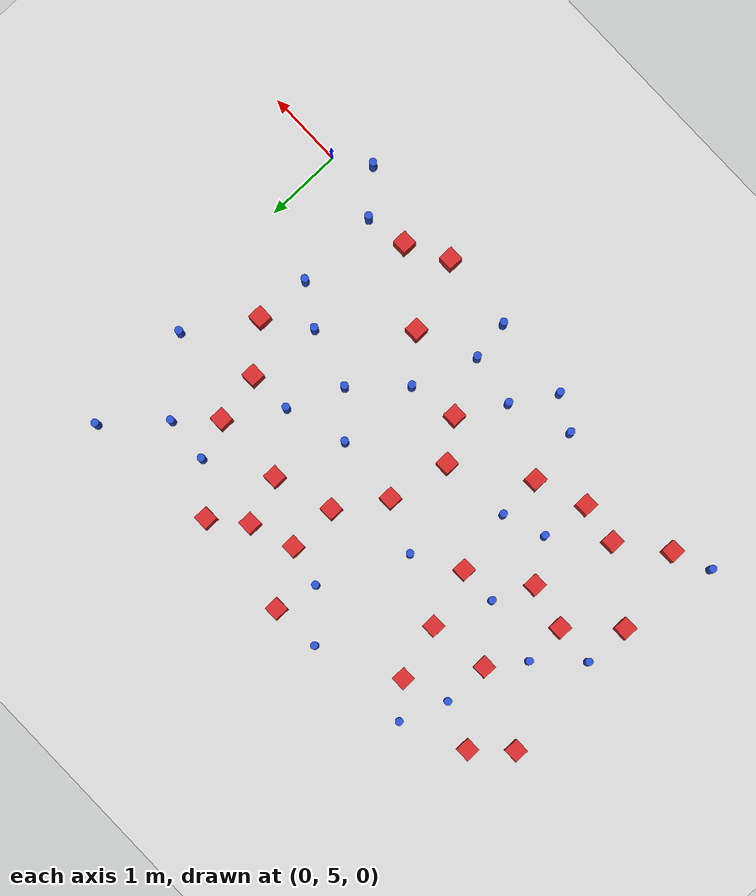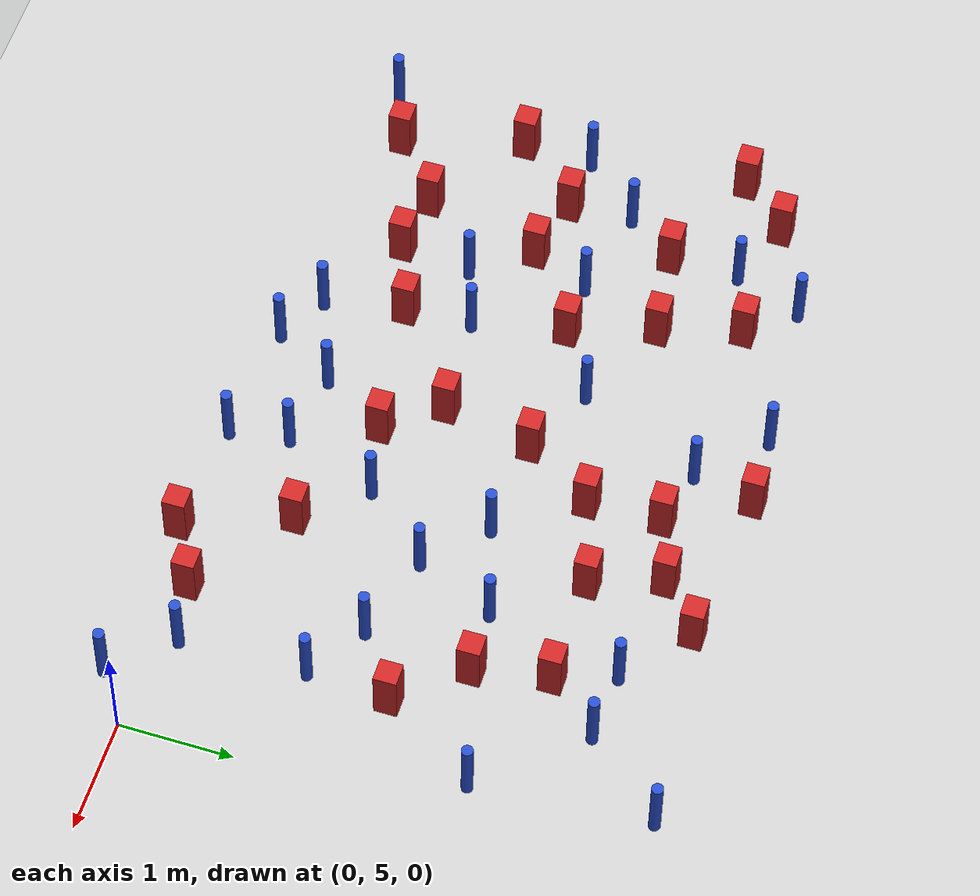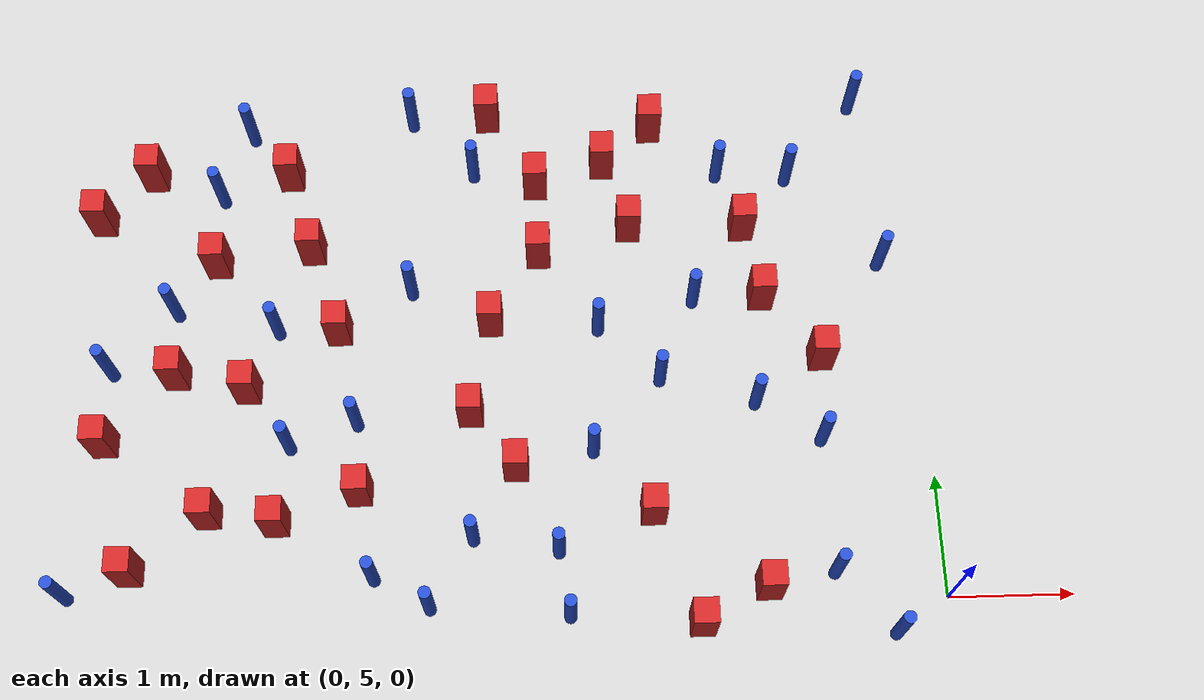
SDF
<sdf version="1.6">
 <world name="default">
  <model name="ground_plane">
   <static>1</static>
   <link name="link">
    <collision name="collision">
     <geometry><plane><normal>0 0 1</normal><size>100 100</size></plane></geometry>
     <surface><friction><ode><mu>100</mu><mu2>50</mu2></ode></friction></surface>
    </collision>
    <visual name="visual">
     <cast_shadows>0</cast_shadows>
     <geometry><plane><normal>0 0 1</normal><size>100 100</size></plane></geometry>
     <material>
      <ambient>1.0 1.0 1.0 1.0</ambient>
      <diffuse>0.8 0.8 0.8 1.0</diffuse>
      <specular>0.01 0.01 0.01 1.000000</specular>
     </material>
    </visual>
   </link>
  </model>
  <model name="square_post_obstacle1">
   <static>true</static>
   <pose>-6.74980819565 6.41191254791 1.91545236811e-07 -7.35059704564e-06 1.12565212e-07 2.39332434364e-05</pose>
   <link name="link">
    <pose>0 0 0.25 0 -0 0</pose>
    <inertial>
     <mass>100</mass>
     <inertia>
      <ixx>0.166667</ixx>
      <ixy>0</ixy>
      <ixz>0</ixz>
      <iyy>0.166667</iyy>
      <iyz>0</iyz>
      <izz>0.166667</izz>
     </inertia>
    </inertial>
    <collision name="collision"><geometry><box><size>.2 .2 .5</size></box></geometry></collision>
    <visual name="visual">
     <geometry><box><size>.2 .2 .5</size></box></geometry>
     <material>
      <script><name>Gazebo/Red</name><uri>file://media/materials/scripts/gazebo.material</uri></script>
     </material>
    </visual>
   </link>
  </model>
  <model name="square_post_obstacle8">
   <static>true</static>
   <pose>-5.31815626611 5.71131109197 1.91545236811e-07 -7.35059704564e-06 1.12565212e-07 2.39332434364e-05</pose>
   <link name="link">
    <pose>0 0 0.25 0 -0 0</pose>
    <inertial>
     <mass>100</mass>
     <inertia>
      <ixx>0.166667</ixx>
      <ixy>0</ixy>
      <ixz>0</ixz>
      <iyy>0.166667</iyy>
      <iyz>0</iyz>
      <izz>0.166667</izz>
     </inertia>
    </inertial>
    <collision name="collision"><geometry><box><size>.2 .2 .5</size></box></geometry></collision>
    <visual name="visual">
     <geometry><box><size>.2 .2 .5</size></box></geometry>
     <material>
      <script><name>Gazebo/Red</name><uri>file://media/materials/scripts/gazebo.material</uri></script>
     </material>
    </visual>
   </link>
  </model>
  <model name="square_post_obstacle9">
   <static>true</static>
   <pose>-1.41606634563 5.10704584635 1.91545236811e-07 -7.35059704564e-06 1.12565212e-07 2.39332434364e-05</pose>
   <link name="link">
    <pose>0 0 0.25 0 -0 0</pose>
    <inertial>
     <mass>100</mass>
     <inertia>
      <ixx>0.166667</ixx>
      <ixy>0</ixy>
      <ixz>0</ixz>
      <iyy>0.166667</iyy>
      <iyz>0</iyz>
      <izz>0.166667</izz>
     </inertia>
    </inertial>
    <collision name="collision"><geometry><box><size>.2 .2 .5</size></box></geometry></collision>
    <visual name="visual">
     <geometry><box><size>.2 .2 .5</size></box></geometry>
     <material>
      <script><name>Gazebo/Red</name><uri>file://media/materials/scripts/gazebo.material</uri></script>
     </material>
    </visual>
   </link>
  </model>
  <model name="square_post_obstacle14">
   <static>true</static>
   <pose>-6.19371936549 6.98780163271 1.91545236811e-07 -7.35059704564e-06 1.12565212e-07 2.39332434364e-05</pose>
   <link name="link">
    <pose>0 0 0.25 0 -0 0</pose>
    <inertial>
     <mass>100</mass>
     <inertia>
      <ixx>0.166667</ixx>
      <ixy>0</ixy>
      <ixz>0</ixz>
      <iyy>0.166667</iyy>
      <iyz>0</iyz>
      <izz>0.166667</izz>
     </inertia>
    </inertial>
    <collision name="collision"><geometry><box><size>.2 .2 .5</size></box></geometry></collision>
    <visual name="visual">
     <geometry><box><size>.2 .2 .5</size></box></geometry>
     <material>
      <script><name>Gazebo/Red</name><uri>file://media/materials/scripts/gazebo.material</uri></script>
     </material>
    </visual>
   </link>
  </model>
  <model name="pole_obstacle14">
   <static>true</static>
   <pose>-1.03722011202 8.71452912254 7.38925637345e-09 -8.47170692798e-08 1.2497676492e-08 -1.74513093025e-07</pose>
   <link name="link">
    <pose>0 0 0.3 0 -0 0</pose>
    <inertial>
     <mass>1</mass>
     <inertia><ixx>0.145833</ixx><ixy>0</ixy><ixz>0</ixz><iyy>0.145833</iyy><iyz>0</iyz><izz>0.125</izz></inertia>
    </inertial>
    <collision name="collision">
     <geometry><cylinder><radius>0.05</radius><length>.6</length></cylinder></geometry>
    </collision>
    <visual name="visual">
     <geometry><cylinder><radius>0.05</radius><length>.6</length></cylinder></geometry>
     <material>
      <script><name>Gazebo/Blue</name><uri>file://media/materials/scripts/gazebo.material</uri></script>
     </material>
    </visual>
   </link>
  </model>
  <model name="square_post_obstacle31">
   <static>true</static>
   <pose>-6.91142593812 8.42208887054 1.91545236811e-07 -7.35059704564e-06 1.12565212e-07 2.39332434364e-05</pose>
   <link name="link">
    <pose>0 0 0.25 0 -0 0</pose>
    <inertial>
     <mass>100</mass>
     <inertia>
      <ixx>0.166667</ixx>
      <ixy>0</ixy>
      <ixz>0</ixz>
      <iyy>0.166667</iyy>
      <iyz>0</iyz>
      <izz>0.166667</izz>
     </inertia>
    </inertial>
    <collision name="collision"><geometry><box><size>.2 .2 .5</size></box></geometry></collision>
    <visual name="visual">
     <geometry><box><size>.2 .2 .5</size></box></geometry>
     <material>
      <script><name>Gazebo/Red</name><uri>file://media/materials/scripts/gazebo.material</uri></script>
     </material>
    </visual>
   </link>
  </model>
  <model name="pole_obstacle33">
   <static>true</static>
   <pose>-2.20297794973 6.87162963352 7.38925637345e-09 -8.47170692798e-08 1.24976765033e-08 -1.74513093019e-07</pose>
   <link name="link">
    <pose>0 0 0.3 0 -0 0</pose>
    <inertial>
     <mass>1</mass>
     <inertia><ixx>0.145833</ixx><ixy>0</ixy><ixz>0</ixz><iyy>0.145833</iyy><iyz>0</iyz><izz>0.125</izz></inertia>
    </inertial>
    <collision name="collision">
     <geometry><cylinder><radius>0.05</radius><length>.6</length></cylinder></geometry>
    </collision>
    <visual name="visual">
     <geometry><cylinder><radius>0.05</radius><length>.6</length></cylinder></geometry>
     <material>
      <script><name>Gazebo/Blue</name><uri>file://media/materials/scripts/gazebo.material</uri></script>
     </material>
    </visual>
   </link>
  </model>
  <model name="pole_obstacle36">
   <static>true</static>
   <pose>-3.74525703613 5.54176647954 7.38925637345e-09 -8.47170692794e-08 1.24976764468e-08 -1.7451309304e-07</pose>
   <link name="link">
    <pose>0 0 0.3 0 -0 0</pose>
    <inertial>
     <mass>1</mass>
     <inertia><ixx>0.145833</ixx><ixy>0</ixy><ixz>0</ixz><iyy>0.145833</iyy><iyz>0</iyz><izz>0.125</izz></inertia>
    </inertial>
    <collision name="collision">
     <geometry><cylinder><radius>0.05</radius><length>.6</length></cylinder></geometry>
    </collision>
    <visual name="visual">
     <geometry><cylinder><radius>0.05</radius><length>.6</length></cylinder></geometry>
     <material>
      <script><name>Gazebo/Blue</name><uri>file://media/materials/scripts/gazebo.material</uri></script>
     </material>
    </visual>
   </link>
  </model>
  <model name="square_post_obstacle43">
   <static>true</static>
   <pose>-4.66022509993 5.95121240094 1.91545236811e-07 -7.35059704564e-06 1.12565212e-07 2.39332434364e-05</pose>
   <link name="link">
    <pose>0 0 0.25 0 -0 0</pose>
    <inertial>
     <mass>100</mass>
     <inertia>
      <ixx>0.166667</ixx>
      <ixy>0</ixy>
      <ixz>0</ixz>
      <iyy>0.166667</iyy>
      <iyz>0</iyz>
      <izz>0.166667</izz>
     </inertia>
    </inertial>
    <collision name="collision"><geometry><box><size>.2 .2 .5</size></box></geometry></collision>
    <visual name="visual">
     <geometry><box><size>.2 .2 .5</size></box></geometry>
     <material>
      <script><name>Gazebo/Red</name><uri>file://media/materials/scripts/gazebo.material</uri></script>
     </material>
    </visual>
   </link>
  </model>
  <model name="pole_obstacle47">
   <static>true</static>
   <pose>-4.69561402672 6.53492184711 7.38925637345e-09 -8.47170692796e-08 1.24976764786e-08 -1.74513093032e-07</pose>
   <link name="link">
    <pose>0 0 0.3 0 -0 0</pose>
    <inertial>
     <mass>1</mass>
     <inertia><ixx>0.145833</ixx><ixy>0</ixy><ixz>0</ixz><iyy>0.145833</iyy><iyz>0</iyz><izz>0.125</izz></inertia>
    </inertial>
    <collision name="collision">
     <geometry><cylinder><radius>0.05</radius><length>.6</length></cylinder></geometry>
    </collision>
    <visual name="visual">
     <geometry><cylinder><radius>0.05</radius><length>.6</length></cylinder></geometry>
     <material>
      <script><name>Gazebo/Blue</name><uri>file://media/materials/scripts/gazebo.material</uri></script>
     </material>
    </visual>
   </link>
  </model>
  <model name="square_post_obstacle56">
   <static>true</static>
   <pose>-4.86194893266 7.35659122037 1.91545236811e-07 -7.35059704564e-06 1.12565212e-07 2.39332434364e-05</pose>
   <link name="link">
    <pose>0 0 0.25 0 -0 0</pose>
    <inertial>
     <mass>100</mass>
     <inertia>
      <ixx>0.166667</ixx>
      <ixy>0</ixy>
      <ixz>0</ixz>
      <iyy>0.166667</iyy>
      <iyz>0</iyz>
      <izz>0.166667</izz>
     </inertia>
    </inertial>
    <collision name="collision"><geometry><box><size>.2 .2 .5</size></box></geometry></collision>
    <visual name="visual">
     <geometry><box><size>.2 .2 .5</size></box></geometry>
     <material>
      <script><name>Gazebo/Red</name><uri>file://media/materials/scripts/gazebo.material</uri></script>
     </material>
    </visual>
   </link>
  </model>
  <model name="square_post_obstacle57">
   <static>true</static>
   <pose>-1.95375694847 4.82960413653 1.91545236811e-07 -7.35059704564e-06 1.12565212e-07 2.39332434364e-05</pose>
   <link name="link">
    <pose>0 0 0.25 0 -0 0</pose>
    <inertial>
     <mass>100</mass>
     <inertia>
      <ixx>0.166667</ixx>
      <ixy>0</ixy>
      <ixz>0</ixz>
      <iyy>0.166667</iyy>
      <iyz>0</iyz>
      <izz>0.166667</izz>
     </inertia>
    </inertial>
    <collision name="collision"><geometry><box><size>.2 .2 .5</size></box></geometry></collision>
    <visual name="visual">
     <geometry><box><size>.2 .2 .5</size></box></geometry>
     <material>
      <script><name>Gazebo/Red</name><uri>file://media/materials/scripts/gazebo.material</uri></script>
     </material>
    </visual>
   </link>
  </model>
  <model name="square_post_obstacle58">
   <static>true</static>
   <pose>-3.59701604902 7.40846574962 1.91545236811e-07 -7.35059704564e-06 1.12565212e-07 2.39332434364e-05</pose>
   <link name="link">
    <pose>0 0 0.25 0 -0 0</pose>
    <inertial>
     <mass>100</mass>
     <inertia>
      <ixx>0.166667</ixx>
      <ixy>0</ixy>
      <ixz>0</ixz>
      <iyy>0.166667</iyy>
      <iyz>0</iyz>
      <izz>0.166667</izz>
     </inertia>
    </inertial>
    <collision name="collision"><geometry><box><size>.2 .2 .5</size></box></geometry></collision>
    <visual name="visual">
     <geometry><box><size>.2 .2 .5</size></box></geometry>
     <material>
      <script><name>Gazebo/Red</name><uri>file://media/materials/scripts/gazebo.material</uri></script>
     </material>
    </visual>
   </link>
  </model>
  <model name="pole_obstacle57">
   <static>true</static>
   <pose>-0.881199028683 5.2098864928 7.38925637345e-09 -8.471706928e-08 1.24976765086e-08 -1.74513093015e-07</pose>
   <link name="link">
    <pose>0 0 0.3 0 -0 0</pose>
    <inertial>
     <mass>1</mass>
     <inertia><ixx>0.145833</ixx><ixy>0</ixy><ixz>0</ixz><iyy>0.145833</iyy><iyz>0</iyz><izz>0.125</izz></inertia>
    </inertial>
    <collision name="collision">
     <geometry><cylinder><radius>0.05</radius><length>.6</length></cylinder></geometry>
    </collision>
    <visual name="visual">
     <geometry><cylinder><radius>0.05</radius><length>.6</length></cylinder></geometry>
     <material>
      <script><name>Gazebo/Blue</name><uri>file://media/materials/scripts/gazebo.material</uri></script>
     </material>
    </visual>
   </link>
  </model>
  <model name="pole_obstacle58">
   <static>true</static>
   <pose>-4.27140751306 9.33314071627 7.38925637345e-09 -8.471706928e-08 1.24976765081e-08 -1.74513093015e-07</pose>
   <link name="link">
    <pose>0 0 0.3 0 -0 0</pose>
    <inertial>
     <mass>1</mass>
     <inertia><ixx>0.145833</ixx><ixy>0</ixy><ixz>0</ixz><iyy>0.145833</iyy><iyz>0</iyz><izz>0.125</izz></inertia>
    </inertial>
    <collision name="collision">
     <geometry><cylinder><radius>0.05</radius><length>.6</length></cylinder></geometry>
    </collision>
    <visual name="visual">
     <geometry><cylinder><radius>0.05</radius><length>.6</length></cylinder></geometry>
     <material>
      <script><name>Gazebo/Blue</name><uri>file://media/materials/scripts/gazebo.material</uri></script>
     </material>
    </visual>
   </link>
  </model>
  <model name="pole_obstacle62">
   <static>true</static>
   <pose>-5.23979569 6.34465374165 7.38925637345e-09 -8.47170692796e-08 1.24976764786e-08 -1.74513093032e-07</pose>
   <link name="link">
    <pose>0 0 0.3 0 -0 0</pose>
    <inertial>
     <mass>1</mass>
     <inertia><ixx>0.145833</ixx><ixy>0</ixy><ixz>0</ixz><iyy>0.145833</iyy><iyz>0</iyz><izz>0.125</izz></inertia>
    </inertial>
    <collision name="collision">
     <geometry><cylinder><radius>0.05</radius><length>.6</length></cylinder></geometry>
    </collision>
    <visual name="visual">
     <geometry><cylinder><radius>0.05</radius><length>.6</length></cylinder></geometry>
     <material>
      <script><name>Gazebo/Blue</name><uri>file://media/materials/scripts/gazebo.material</uri></script>
     </material>
    </visual>
   </link>
  </model>
  <model name="square_post_obstacle70">
   <static>true</static>
   <pose>-0.860767166952 7.03970441917 1.91545236811e-07 -7.35059704564e-06 1.12565212e-07 2.39332434364e-05</pose>
   <link name="link">
    <pose>0 0 0.25 0 -0 0</pose>
    <inertial>
     <mass>100</mass>
     <inertia>
      <ixx>0.166667</ixx>
      <ixy>0</ixy>
      <ixz>0</ixz>
      <iyy>0.166667</iyy>
      <iyz>0</iyz>
      <izz>0.166667</izz>
     </inertia>
    </inertial>
    <collision name="collision"><geometry><box><size>.2 .2 .5</size></box></geometry></collision>
    <visual name="visual">
     <geometry><box><size>.2 .2 .5</size></box></geometry>
     <material>
      <script><name>Gazebo/Red</name><uri>file://media/materials/scripts/gazebo.material</uri></script>
     </material>
    </visual>
   </link>
  </model>
  <model name="pole_obstacle78">
   <static>true</static>
   <pose>-6.9549150517 5.13867320979 7.38925637345e-09 -8.47170692796e-08 1.24976764786e-08 -1.74513093032e-07</pose>
   <link name="link">
    <pose>0 0 0.3 0 -0 0</pose>
    <inertial>
     <mass>1</mass>
     <inertia><ixx>0.145833</ixx><ixy>0</ixy><ixz>0</ixz><iyy>0.145833</iyy><iyz>0</iyz><izz>0.125</izz></inertia>
    </inertial>
    <collision name="collision">
     <geometry><cylinder><radius>0.05</radius><length>.6</length></cylinder></geometry>
    </collision>
    <visual name="visual">
     <geometry><cylinder><radius>0.05</radius><length>.6</length></cylinder></geometry>
     <material>
      <script><name>Gazebo/Blue</name><uri>file://media/materials/scripts/gazebo.material</uri></script>
     </material>
    </visual>
   </link>
  </model>
  <model name="square_post_obstacle80">
   <static>true</static>
   <pose>-6.49339954893 8.84500670566 1.91545236811e-07 -7.35059704564e-06 1.12565212e-07 2.39332434364e-05</pose>
   <link name="link">
    <pose>0 0 0.25 0 -0 0</pose>
    <inertial>
     <mass>100</mass>
     <inertia>
      <ixx>0.166667</ixx>
      <ixy>0</ixy>
      <ixz>0</ixz>
      <iyy>0.166667</iyy>
      <iyz>0</iyz>
      <izz>0.166667</izz>
     </inertia>
    </inertial>
    <collision name="collision"><geometry><box><size>.2 .2 .5</size></box></geometry></collision>
    <visual name="visual">
     <geometry><box><size>.2 .2 .5</size></box></geometry>
     <material>
      <script><name>Gazebo/Red</name><uri>file://media/materials/scripts/gazebo.material</uri></script>
     </material>
    </visual>
   </link>
  </model>
  <model name="square_post_obstacle85">
   <static>true</static>
   <pose>-2.63143152193 8.87772631918 1.91545236811e-07 -7.35059704564e-06 1.12565212e-07 2.39332434364e-05</pose>
   <link name="link">
    <pose>0 0 0.25 0 -0 0</pose>
    <inertial>
     <mass>100</mass>
     <inertia>
      <ixx>0.166667</ixx>
      <ixy>0</ixy>
      <ixz>0</ixz>
      <iyy>0.166667</iyy>
      <iyz>0</iyz>
      <izz>0.166667</izz>
     </inertia>
    </inertial>
    <collision name="collision"><geometry><box><size>.2 .2 .5</size></box></geometry></collision>
    <visual name="visual">
     <geometry><box><size>.2 .2 .5</size></box></geometry>
     <material>
      <script><name>Gazebo/Red</name><uri>file://media/materials/scripts/gazebo.material</uri></script>
     </material>
    </visual>
   </link>
  </model>
  <model name="pole_obstacle98">
   <static>true</static>
   <pose>-1.42476285411 6.64820681242 7.38925637345e-09 -8.47170692799e-08 1.24976765033e-08 -1.74513093018e-07</pose>
   <link name="link">
    <pose>0 0 0.3 0 -0 0</pose>
    <inertial>
     <mass>1</mass>
     <inertia><ixx>0.145833</ixx><ixy>0</ixy><ixz>0</ixz><iyy>0.145833</iyy><iyz>0</iyz><izz>0.125</izz></inertia>
    </inertial>
    <collision name="collision">
     <geometry><cylinder><radius>0.05</radius><length>.6</length></cylinder></geometry>
    </collision>
    <visual name="visual">
     <geometry><cylinder><radius>0.05</radius><length>.6</length></cylinder></geometry>
     <material>
      <script><name>Gazebo/Blue</name><uri>file://media/materials/scripts/gazebo.material</uri></script>
     </material>
    </visual>
   </link>
  </model>
  <model name="pole_obstacle106">
   <static>true</static>
   <pose>-2.76770003163 6.25996552945 7.38925637345e-09 -8.47170692798e-08 1.24976765033e-08 -1.74513093019e-07</pose>
   <link name="link">
    <pose>0 0 0.3 0 -0 0</pose>
    <inertial>
     <mass>1</mass>
     <inertia><ixx>0.145833</ixx><ixy>0</ixy><ixz>0</ixz><iyy>0.145833</iyy><iyz>0</iyz><izz>0.125</izz></inertia>
    </inertial>
    <collision name="collision">
     <geometry><cylinder><radius>0.05</radius><length>.6</length></cylinder></geometry>
    </collision>
    <visual name="visual">
     <geometry><cylinder><radius>0.05</radius><length>.6</length></cylinder></geometry>
     <material>
      <script><name>Gazebo/Blue</name><uri>file://media/materials/scripts/gazebo.material</uri></script>
     </material>
    </visual>
   </link>
  </model>
  <model name="square_post_obstacle94">
   <static>true</static>
   <pose>-1.45116972574 8.24971215237 1.91545236811e-07 -7.35059704564e-06 1.12565212e-07 2.39332434364e-05</pose>
   <link name="link">
    <pose>0 0 0.25 0 -0 0</pose>
    <inertial>
     <mass>100</mass>
     <inertia>
      <ixx>0.166667</ixx>
      <ixy>0</ixy>
      <ixz>0</ixz>
      <iyy>0.166667</iyy>
      <iyz>0</iyz>
      <izz>0.166667</izz>
     </inertia>
    </inertial>
    <collision name="collision"><geometry><box><size>.2 .2 .5</size></box></geometry></collision>
    <visual name="visual">
     <geometry><box><size>.2 .2 .5</size></box></geometry>
     <material>
      <script><name>Gazebo/Red</name><uri>file://media/materials/scripts/gazebo.material</uri></script>
     </material>
    </visual>
   </link>
  </model>
  <model name="pole_obstacle111">
   <static>true</static>
   <pose>-4.08898049188 4.9918771176 7.38925637345e-09 -8.47170692796e-08 1.24976764786e-08 -1.74513093032e-07</pose>
   <link name="link">
    <pose>0 0 0.3 0 -0 0</pose>
    <inertial>
     <mass>1</mass>
     <inertia><ixx>0.145833</ixx><ixy>0</ixy><ixz>0</ixz><iyy>0.145833</iyy><iyz>0</iyz><izz>0.125</izz></inertia>
    </inertial>
    <collision name="collision">
     <geometry><cylinder><radius>0.05</radius><length>.6</length></cylinder></geometry>
    </collision>
    <visual name="visual">
     <geometry><cylinder><radius>0.05</radius><length>.6</length></cylinder></geometry>
     <material>
      <script><name>Gazebo/Blue</name><uri>file://media/materials/scripts/gazebo.material</uri></script>
     </material>
    </visual>
   </link>
  </model>
  <model name="square_post_obstacle102">
   <static>true</static>
   <pose>-2.30257768896 5.74041312839 1.91545236811e-07 -7.35059704564e-06 1.12565212e-07 2.39332434364e-05</pose>
   <link name="link">
    <pose>0 0 0.25 0 -0 0</pose>
    <inertial>
     <mass>100</mass>
     <inertia>
      <ixx>0.166667</ixx>
      <ixy>0</ixy>
      <ixz>0</ixz>
      <iyy>0.166667</iyy>
      <iyz>0</iyz>
      <izz>0.166667</izz>
     </inertia>
    </inertial>
    <collision name="collision"><geometry><box><size>.2 .2 .5</size></box></geometry></collision>
    <visual name="visual">
     <geometry><box><size>.2 .2 .5</size></box></geometry>
     <material>
      <script><name>Gazebo/Red</name><uri>file://media/materials/scripts/gazebo.material</uri></script>
     </material>
    </visual>
   </link>
  </model>
  <model name="square_post_obstacle112">
   <static>true</static>
   <pose>-3.61967836778 9.36351441055 1.91545236811e-07 -7.35059704564e-06 1.12565212e-07 2.39332434364e-05</pose>
   <link name="link">
    <pose>0 0 0.25 0 -0 0</pose>
    <inertial>
     <mass>100</mass>
     <inertia>
      <ixx>0.166667</ixx>
      <ixy>0</ixy>
      <ixz>0</ixz>
      <iyy>0.166667</iyy>
      <iyz>0</iyz>
      <izz>0.166667</izz>
     </inertia>
    </inertial>
    <collision name="collision"><geometry><box><size>.2 .2 .5</size></box></geometry></collision>
    <visual name="visual">
     <geometry><box><size>.2 .2 .5</size></box></geometry>
     <material>
      <script><name>Gazebo/Red</name><uri>file://media/materials/scripts/gazebo.material</uri></script>
     </material>
    </visual>
   </link>
  </model>
  <model name="pole_obstacle122">
   <static>true</static>
   <pose>-1.63828377576 8.76223526849 7.38925637345e-09 -8.47170692798e-08 1.24976764881e-08 -1.74513093027e-07</pose>
   <link name="link">
    <pose>0 0 0.3 0 -0 0</pose>
    <inertial>
     <mass>1</mass>
     <inertia><ixx>0.145833</ixx><ixy>0</ixy><ixz>0</ixz><iyy>0.145833</iyy><iyz>0</iyz><izz>0.125</izz></inertia>
    </inertial>
    <collision name="collision">
     <geometry><cylinder><radius>0.05</radius><length>.6</length></cylinder></geometry>
    </collision>
    <visual name="visual">
     <geometry><cylinder><radius>0.05</radius><length>.6</length></cylinder></geometry>
     <material>
      <script><name>Gazebo/Blue</name><uri>file://media/materials/scripts/gazebo.material</uri></script>
     </material>
    </visual>
   </link>
  </model>
  <model name="pole_obstacle123">
   <static>true</static>
   <pose>-4.25988179346 7.70434869226 7.38925637345e-09 -8.47170692796e-08 1.24976764786e-08 -1.74513093032e-07</pose>
   <link name="link">
    <pose>0 0 0.3 0 -0 0</pose>
    <inertial>
     <mass>1</mass>
     <inertia><ixx>0.145833</ixx><ixy>0</ixy><ixz>0</ixz><iyy>0.145833</iyy><iyz>0</iyz><izz>0.125</izz></inertia>
    </inertial>
    <collision name="collision">
     <geometry><cylinder><radius>0.05</radius><length>.6</length></cylinder></geometry>
    </collision>
    <visual name="visual">
     <geometry><cylinder><radius>0.05</radius><length>.6</length></cylinder></geometry>
     <material>
      <script><name>Gazebo/Blue</name><uri>file://media/materials/scripts/gazebo.material</uri></script>
     </material>
    </visual>
   </link>
  </model>
  <model name="pole_obstacle126">
   <static>true</static>
   <pose>-0.304045862667 7.8843173404 7.38925637345e-09 -8.471706928e-08 1.24976765079e-08 -1.74513093015e-07</pose>
   <link name="link">
    <pose>0 0 0.3 0 -0 0</pose>
    <inertial>
     <mass>1</mass>
     <inertia><ixx>0.145833</ixx><ixy>0</ixy><ixz>0</ixz><iyy>0.145833</iyy><iyz>0</iyz><izz>0.125</izz></inertia>
    </inertial>
    <collision name="collision">
     <geometry><cylinder><radius>0.05</radius><length>.6</length></cylinder></geometry>
    </collision>
    <visual name="visual">
     <geometry><cylinder><radius>0.05</radius><length>.6</length></cylinder></geometry>
     <material>
      <script><name>Gazebo/Blue</name><uri>file://media/materials/scripts/gazebo.material</uri></script>
     </material>
    </visual>
   </link>
  </model>
  <model name="pole_obstacle127">
   <static>true</static>
   <pose>-0.437955153199 4.71534373623 7.38925637345e-09 -8.471706928e-08 1.24976765079e-08 -1.74513093015e-07</pose>
   <link name="link">
    <pose>0 0 0.3 0 -0 0</pose>
    <inertial>
     <mass>1</mass>
     <inertia><ixx>0.145833</ixx><ixy>0</ixy><ixz>0</ixz><iyy>0.145833</iyy><iyz>0</iyz><izz>0.125</izz></inertia>
    </inertial>
    <collision name="collision">
     <geometry><cylinder><radius>0.05</radius><length>.6</length></cylinder></geometry>
    </collision>
    <visual name="visual">
     <geometry><cylinder><radius>0.05</radius><length>.6</length></cylinder></geometry>
     <material>
      <script><name>Gazebo/Blue</name><uri>file://media/materials/scripts/gazebo.material</uri></script>
     </material>
    </visual>
   </link>
  </model>
  <model name="square_post_obstacle113">
   <static>true</static>
   <pose>-3.39763083607 6.13116922889 1.91545236811e-07 -7.35059704564e-06 1.12565212e-07 2.39332434364e-05</pose>
   <link name="link">
    <pose>0 0 0.25 0 -0 0</pose>
    <inertial>
     <mass>100</mass>
     <inertia>
      <ixx>0.166667</ixx>
      <ixy>0</ixy>
      <ixz>0</ixz>
      <iyy>0.166667</iyy>
      <iyz>0</iyz>
      <izz>0.166667</izz>
     </inertia>
    </inertial>
    <collision name="collision"><geometry><box><size>.2 .2 .5</size></box></geometry></collision>
    <visual name="visual">
     <geometry><box><size>.2 .2 .5</size></box></geometry>
     <material>
      <script><name>Gazebo/Red</name><uri>file://media/materials/scripts/gazebo.material</uri></script>
     </material>
    </visual>
   </link>
  </model>
  <model name="pole_obstacle129">
   <static>true</static>
   <pose>-6.73546118821 7.02579661546 7.38925637345e-09 -8.47170692796e-08 1.24976764786e-08 -1.74513093032e-07</pose>
   <link name="link">
    <pose>0 0 0.3 0 -0 0</pose>
    <inertial>
     <mass>1</mass>
     <inertia><ixx>0.145833</ixx><ixy>0</ixy><ixz>0</ixz><iyy>0.145833</iyy><iyz>0</iyz><izz>0.125</izz></inertia>
    </inertial>
    <collision name="collision">
     <geometry><cylinder><radius>0.05</radius><length>.6</length></cylinder></geometry>
    </collision>
    <visual name="visual">
     <geometry><cylinder><radius>0.05</radius><length>.6</length></cylinder></geometry>
     <material>
      <script><name>Gazebo/Blue</name><uri>file://media/materials/scripts/gazebo.material</uri></script>
     </material>
    </visual>
   </link>
  </model>
  <model name="square_post_obstacle122">
   <static>true</static>
   <pose>-1.32738955477 7.59717632512 1.91545236811e-07 -7.35059704564e-06 1.12565212e-07 2.39332434364e-05</pose>
   <link name="link">
    <pose>0 0 0.25 0 -0 0</pose>
    <inertial>
     <mass>100</mass>
     <inertia>
      <ixx>0.166667</ixx>
      <ixy>0</ixy>
      <ixz>0</ixz>
      <iyy>0.166667</iyy>
      <iyz>0</iyz>
      <izz>0.166667</izz>
     </inertia>
    </inertial>
    <collision name="collision"><geometry><box><size>.2 .2 .5</size></box></geometry></collision>
    <visual name="visual">
     <geometry><box><size>.2 .2 .5</size></box></geometry>
     <material>
      <script><name>Gazebo/Red</name><uri>file://media/materials/scripts/gazebo.material</uri></script>
     </material>
    </visual>
   </link>
  </model>
  <model name="pole_obstacle139">
   <static>true</static>
   <pose>-1.8990231219 7.57481153132 7.38925637345e-09 -8.47170692799e-08 1.24976765033e-08 -1.74513093018e-07</pose>
   <link name="link">
    <pose>0 0 0.3 0 -0 0</pose>
    <inertial>
     <mass>1</mass>
     <inertia><ixx>0.145833</ixx><ixy>0</ixy><ixz>0</ixz><iyy>0.145833</iyy><iyz>0</iyz><izz>0.125</izz></inertia>
    </inertial>
    <collision name="collision">
     <geometry><cylinder><radius>0.05</radius><length>.6</length></cylinder></geometry>
    </collision>
    <visual name="visual">
     <geometry><cylinder><radius>0.05</radius><length>.6</length></cylinder></geometry>
     <material>
      <script><name>Gazebo/Blue</name><uri>file://media/materials/scripts/gazebo.material</uri></script>
     </material>
    </visual>
   </link>
  </model>
  <model name="pole_obstacle140">
   <static>true</static>
   <pose>-0.426847442969 9.41501847321 7.38925637345e-09 -8.47170692796e-08 1.24976764724e-08 -1.74513093036e-07</pose>
   <link name="link">
    <pose>0 0 0.3 0 -0 0</pose>
    <inertial>
     <mass>1</mass>
     <inertia><ixx>0.145833</ixx><ixy>0</ixy><ixz>0</ixz><iyy>0.145833</iyy><iyz>0</iyz><izz>0.125</izz></inertia>
    </inertial>
    <collision name="collision">
     <geometry><cylinder><radius>0.05</radius><length>.6</length></cylinder></geometry>
    </collision>
    <visual name="visual">
     <geometry><cylinder><radius>0.05</radius><length>.6</length></cylinder></geometry>
     <material>
      <script><name>Gazebo/Blue</name><uri>file://media/materials/scripts/gazebo.material</uri></script>
     </material>
    </visual>
   </link>
  </model>
  <model name="pole_obstacle146">
   <static>true</static>
   <pose>-2.98436485743 4.9047756514 7.38925637345e-09 -8.47170692798e-08 1.24976765033e-08 -1.74513093019e-07</pose>
   <link name="link">
    <pose>0 0 0.3 0 -0 0</pose>
    <inertial>
     <mass>1</mass>
     <inertia><ixx>0.145833</ixx><ixy>0</ixy><ixz>0</ixz><iyy>0.145833</iyy><iyz>0</iyz><izz>0.125</izz></inertia>
    </inertial>
    <collision name="collision">
     <geometry><cylinder><radius>0.05</radius><length>.6</length></cylinder></geometry>
    </collision>
    <visual name="visual">
     <geometry><cylinder><radius>0.05</radius><length>.6</length></cylinder></geometry>
     <material>
      <script><name>Gazebo/Blue</name><uri>file://media/materials/scripts/gazebo.material</uri></script>
     </material>
    </visual>
   </link>
  </model>
  <model name="square_post_obstacle141">
   <static>true</static>
   <pose>-5.10523602609 8.10590142194 1.91545236811e-07 -7.35059704564e-06 1.12565212e-07 2.39332434364e-05</pose>
   <link name="link">
    <pose>0 0 0.25 0 -0 0</pose>
    <inertial>
     <mass>100</mass>
     <inertia>
      <ixx>0.166667</ixx>
      <ixy>0</ixy>
      <ixz>0</ixz>
      <iyy>0.166667</iyy>
      <iyz>0</iyz>
      <izz>0.166667</izz>
     </inertia>
    </inertial>
    <collision name="collision"><geometry><box><size>.2 .2 .5</size></box></geometry></collision>
    <visual name="visual">
     <geometry><box><size>.2 .2 .5</size></box></geometry>
     <material>
      <script><name>Gazebo/Red</name><uri>file://media/materials/scripts/gazebo.material</uri></script>
     </material>
    </visual>
   </link>
  </model>
  <model name="square_post_obstacle142">
   <static>true</static>
   <pose>-5.31721303623 8.81961925882 1.91545236811e-07 -7.35059704564e-06 1.12565212e-07 2.39332434364e-05</pose>
   <link name="link">
    <pose>0 0 0.25 0 -0 0</pose>
    <inertial>
     <mass>100</mass>
     <inertia>
      <ixx>0.166667</ixx>
      <ixy>0</ixy>
      <ixz>0</ixz>
      <iyy>0.166667</iyy>
      <iyz>0</iyz>
      <izz>0.166667</izz>
     </inertia>
    </inertial>
    <collision name="collision"><geometry><box><size>.2 .2 .5</size></box></geometry></collision>
    <visual name="visual">
     <geometry><box><size>.2 .2 .5</size></box></geometry>
     <material>
      <script><name>Gazebo/Red</name><uri>file://media/materials/scripts/gazebo.material</uri></script>
     </material>
    </visual>
   </link>
  </model>
  <model name="square_post_obstacle146">
   <static>true</static>
   <pose>-3.19036442156 8.02924587784 1.91545236811e-07 -7.35059704564e-06 1.12565212e-07 2.39332434364e-05</pose>
   <link name="link">
    <pose>0 0 0.25 0 -0 0</pose>
    <inertial>
     <mass>100</mass>
     <inertia>
      <ixx>0.166667</ixx>
      <ixy>0</ixy>
      <ixz>0</ixz>
      <iyy>0.166667</iyy>
      <iyz>0</iyz>
      <izz>0.166667</izz>
     </inertia>
    </inertial>
    <collision name="collision"><geometry><box><size>.2 .2 .5</size></box></geometry></collision>
    <visual name="visual">
     <geometry><box><size>.2 .2 .5</size></box></geometry>
     <material>
      <script><name>Gazebo/Red</name><uri>file://media/materials/scripts/gazebo.material</uri></script>
     </material>
    </visual>
   </link>
  </model>
  <model name="square_post_obstacle149">
   <static>true</static>
   <pose>-3.76550765115 6.60519592932 1.91545236811e-07 -7.35059704564e-06 1.12565212e-07 2.39332434364e-05</pose>
   <link name="link">
    <pose>0 0 0.25 0 -0 0</pose>
    <inertial>
     <mass>100</mass>
     <inertia>
      <ixx>0.166667</ixx>
      <ixy>0</ixy>
      <ixz>0</ixz>
      <iyy>0.166667</iyy>
      <iyz>0</iyz>
      <izz>0.166667</izz>
     </inertia>
    </inertial>
    <collision name="collision"><geometry><box><size>.2 .2 .5</size></box></geometry></collision>
    <visual name="visual">
     <geometry><box><size>.2 .2 .5</size></box></geometry>
     <material>
      <script><name>Gazebo/Red</name><uri>file://media/materials/scripts/gazebo.material</uri></script>
     </material>
    </visual>
   </link>
  </model>
  <model name="pole_obstacle158">
   <static>true</static>
   <pose>-5.3709518521 7.36663470559 7.38925637345e-09 -8.47170692796e-08 1.24976764786e-08 -1.74513093032e-07</pose>
   <link name="link">
    <pose>0 0 0.3 0 -0 0</pose>
    <inertial>
     <mass>1</mass>
     <inertia><ixx>0.145833</ixx><ixy>0</ixy><ixz>0</ixz><iyy>0.145833</iyy><iyz>0</iyz><izz>0.125</izz></inertia>
    </inertial>
    <collision name="collision">
     <geometry><cylinder><radius>0.05</radius><length>.6</length></cylinder></geometry>
    </collision>
    <visual name="visual">
     <geometry><cylinder><radius>0.05</radius><length>.6</length></cylinder></geometry>
     <material>
      <script><name>Gazebo/Blue</name><uri>file://media/materials/scripts/gazebo.material</uri></script>
     </material>
    </visual>
   </link>
  </model>
  <model name="square_post_obstacle152">
   <static>true</static>
   <pose>-3.20698139702 8.68711481928 1.91545236811e-07 -7.35059704564e-06 1.12565212e-07 2.39332434364e-05</pose>
   <link name="link">
    <pose>0 0 0.25 0 -0 0</pose>
    <inertial>
     <mass>100</mass>
     <inertia>
      <ixx>0.166667</ixx>
      <ixy>0</ixy>
      <ixz>0</ixz>
      <iyy>0.166667</iyy>
      <iyz>0</iyz>
      <izz>0.166667</izz>
     </inertia>
    </inertial>
    <collision name="collision"><geometry><box><size>.2 .2 .5</size></box></geometry></collision>
    <visual name="visual">
     <geometry><box><size>.2 .2 .5</size></box></geometry>
     <material>
      <script><name>Gazebo/Red</name><uri>file://media/materials/scripts/gazebo.material</uri></script>
     </material>
    </visual>
   </link>
  </model>
  <model name="square_post_obstacle154">
   <static>true</static>
   <pose>-5.89974120197 7.99778594864 1.91545236811e-07 -7.35059704564e-06 1.12565212e-07 2.39332434364e-05</pose>
   <link name="link">
    <pose>0 0 0.25 0 -0 0</pose>
    <inertial>
     <mass>100</mass>
     <inertia>
      <ixx>0.166667</ixx>
      <ixy>0</ixy>
      <ixz>0</ixz>
      <iyy>0.166667</iyy>
      <iyz>0</iyz>
      <izz>0.166667</izz>
     </inertia>
    </inertial>
    <collision name="collision"><geometry><box><size>.2 .2 .5</size></box></geometry></collision>
    <visual name="visual">
     <geometry><box><size>.2 .2 .5</size></box></geometry>
     <material>
      <script><name>Gazebo/Red</name><uri>file://media/materials/scripts/gazebo.material</uri></script>
     </material>
    </visual>
   </link>
  </model>
  <model name="square_post_obstacle163">
   <static>true</static>
   <pose>-2.21028014142 9.22938526829 1.91545236811e-07 -7.35059704564e-06 1.12565212e-07 2.39332434364e-05</pose>
   <link name="link">
    <pose>0 0 0.25 0 -0 0</pose>
    <inertial>
     <mass>100</mass>
     <inertia>
      <ixx>0.166667</ixx>
      <ixy>0</ixy>
      <ixz>0</ixz>
      <iyy>0.166667</iyy>
      <iyz>0</iyz>
      <izz>0.166667</izz>
     </inertia>
    </inertial>
    <collision name="collision"><geometry><box><size>.2 .2 .5</size></box></geometry></collision>
    <visual name="visual">
     <geometry><box><size>.2 .2 .5</size></box></geometry>
     <material>
      <script><name>Gazebo/Red</name><uri>file://media/materials/scripts/gazebo.material</uri></script>
     </material>
    </visual>
   </link>
  </model>
  <model name="pole_obstacle179">
   <static>true</static>
   <pose>-3.06385200066 5.42715960677 7.38925637345e-09 -8.47170692798e-08 1.24976765033e-08 -1.74513093019e-07</pose>
   <link name="link">
    <pose>0 0 0.3 0 -0 0</pose>
    <inertial>
     <mass>1</mass>
     <inertia><ixx>0.145833</ixx><ixy>0</ixy><ixz>0</ixz><iyy>0.145833</iyy><iyz>0</iyz><izz>0.125</izz></inertia>
    </inertial>
    <collision name="collision">
     <geometry><cylinder><radius>0.05</radius><length>.6</length></cylinder></geometry>
    </collision>
    <visual name="visual">
     <geometry><cylinder><radius>0.05</radius><length>.6</length></cylinder></geometry>
     <material>
      <script><name>Gazebo/Blue</name><uri>file://media/materials/scripts/gazebo.material</uri></script>
     </material>
    </visual>
   </link>
  </model>
  <model name="pole_obstacle184">
   <static>true</static>
   <pose>-2.70152069741 7.33685684606 7.38925637345e-09 -8.47170692798e-08 1.24976765033e-08 -1.74513093019e-07</pose>
   <link name="link">
    <pose>0 0 0.3 0 -0 0</pose>
    <inertial>
     <mass>1</mass>
     <inertia><ixx>0.145833</ixx><ixy>0</ixy><ixz>0</ixz><iyy>0.145833</iyy><iyz>0</iyz><izz>0.125</izz></inertia>
    </inertial>
    <collision name="collision">
     <geometry><cylinder><radius>0.05</radius><length>.6</length></cylinder></geometry>
    </collision>
    <visual name="visual">
     <geometry><cylinder><radius>0.05</radius><length>.6</length></cylinder></geometry>
     <material>
      <script><name>Gazebo/Blue</name><uri>file://media/materials/scripts/gazebo.material</uri></script>
     </material>
    </visual>
   </link>
  </model>
  <model name="square_post_obstacle182">
   <static>true</static>
   <pose>-5.87004777316 5.78767432656 1.91545236811e-07 -7.35059704564e-06 1.12565212e-07 2.39332434364e-05</pose>
   <link name="link">
    <pose>0 0 0.25 0 -0 0</pose>
    <inertial>
     <mass>100</mass>
     <inertia>
      <ixx>0.166667</ixx>
      <ixy>0</ixy>
      <ixz>0</ixz>
      <iyy>0.166667</iyy>
      <iyz>0</iyz>
      <izz>0.166667</izz>
     </inertia>
    </inertial>
    <collision name="collision"><geometry><box><size>.2 .2 .5</size></box></geometry></collision>
    <visual name="visual">
     <geometry><box><size>.2 .2 .5</size></box></geometry>
     <material>
      <script><name>Gazebo/Red</name><uri>file://media/materials/scripts/gazebo.material</uri></script>
     </material>
    </visual>
   </link>
  </model>
  <model name="square_post_obstacle184">
   <static>true</static>
   <pose>-2.42245965723 8.26223931929 1.91545236811e-07 -7.35059704564e-06 1.12565212e-07 2.39332434364e-05</pose>
   <link name="link">
    <pose>0 0 0.25 0 -0 0</pose>
    <inertial>
     <mass>100</mass>
     <inertia>
      <ixx>0.166667</ixx>
      <ixy>0</ixy>
      <ixz>0</ixz>
      <iyy>0.166667</iyy>
      <iyz>0</iyz>
      <izz>0.166667</izz>
     </inertia>
    </inertial>
    <collision name="collision"><geometry><box><size>.2 .2 .5</size></box></geometry></collision>
    <visual name="visual">
     <geometry><box><size>.2 .2 .5</size></box></geometry>
     <material>
      <script><name>Gazebo/Red</name><uri>file://media/materials/scripts/gazebo.material</uri></script>
     </material>
    </visual>
   </link>
  </model>
  <model name="square_post_obstacle187">
   <static>true</static>
   <pose>-6.46563555319 5.33194189215 1.91545236811e-07 -7.35059704564e-06 1.12565212e-07 2.39332434364e-05</pose>
   <link name="link">
    <pose>0 0 0.25 0 -0 0</pose>
    <inertial>
     <mass>100</mass>
     <inertia>
      <ixx>0.166667</ixx>
      <ixy>0</ixy>
      <ixz>0</ixz>
      <iyy>0.166667</iyy>
      <iyz>0</iyz>
      <izz>0.166667</izz>
     </inertia>
    </inertial>
    <collision name="collision"><geometry><box><size>.2 .2 .5</size></box></geometry></collision>
    <visual name="visual">
     <geometry><box><size>.2 .2 .5</size></box></geometry>
     <material>
      <script><name>Gazebo/Red</name><uri>file://media/materials/scripts/gazebo.material</uri></script>
     </material>
    </visual>
   </link>
  </model>
  <model name="square_post_obstacle190">
   <static>true</static>
   <pose>-5.59844955643 6.85108449192 1.91545236811e-07 -7.35059704564e-06 1.12565212e-07 2.39332434364e-05</pose>
   <link name="link">
    <pose>0 0 0.25 0 -0 0</pose>
    <inertial>
     <mass>100</mass>
     <inertia>
      <ixx>0.166667</ixx>
      <ixy>0</ixy>
      <ixz>0</ixz>
      <iyy>0.166667</iyy>
      <iyz>0</iyz>
      <izz>0.166667</izz>
     </inertia>
    </inertial>
    <collision name="collision"><geometry><box><size>.2 .2 .5</size></box></geometry></collision>
    <visual name="visual">
     <geometry><box><size>.2 .2 .5</size></box></geometry>
     <material>
      <script><name>Gazebo/Red</name><uri>file://media/materials/scripts/gazebo.material</uri></script>
     </material>
    </visual>
   </link>
  </model>
  <model name="pole_obstacle198">
   <static>true</static>
   <pose>-0.905924515009 6.3171579808 7.38925637345e-09 -8.471706928e-08 1.24976765086e-08 -1.74513093015e-07</pose>
   <link name="link">
    <pose>0 0 0.3 0 -0 0</pose>
    <inertial>
     <mass>1</mass>
     <inertia><ixx>0.145833</ixx><ixy>0</ixy><ixz>0</ixz><iyy>0.145833</iyy><iyz>0</iyz><izz>0.125</izz></inertia>
    </inertial>
    <collision name="collision">
     <geometry><cylinder><radius>0.05</radius><length>.6</length></cylinder></geometry>
    </collision>
    <visual name="visual">
     <geometry><cylinder><radius>0.05</radius><length>.6</length></cylinder></geometry>
     <material>
      <script><name>Gazebo/Blue</name><uri>file://media/materials/scripts/gazebo.material</uri></script>
     </material>
    </visual>
   </link>
  </model>
  <model name="pole_obstacle199">
   <static>true</static>
   <pose>-4.53429858195 5.23531767771 7.38925637345e-09 -8.47170692796e-08 1.24976764786e-08 -1.74513093032e-07</pose>
   <link name="link">
    <pose>0 0 0.3 0 -0 0</pose>
    <inertial>
     <mass>1</mass>
     <inertia><ixx>0.145833</ixx><ixy>0</ixy><ixz>0</ixz><iyy>0.145833</iyy><iyz>0</iyz><izz>0.125</izz></inertia>
    </inertial>
    <collision name="collision">
     <geometry><cylinder><radius>0.05</radius><length>.6</length></cylinder></geometry>
    </collision>
    <visual name="visual">
     <geometry><cylinder><radius>0.05</radius><length>.6</length></cylinder></geometry>
     <material>
      <script><name>Gazebo/Blue</name><uri>file://media/materials/scripts/gazebo.material</uri></script>
     </material>
    </visual>
   </link>
  </model>
  <model name="pole_obstacle212">
   <static>true</static>
   <pose>-6.2261877293 7.549890887 7.38925637345e-09 -8.47170692796e-08 1.24976764786e-08 -1.74513093032e-07</pose>
   <link name="link">
    <pose>0 0 0.3 0 -0 0</pose>
    <inertial>
     <mass>1</mass>
     <inertia><ixx>0.145833</ixx><ixy>0</ixy><ixz>0</ixz><iyy>0.145833</iyy><iyz>0</iyz><izz>0.125</izz></inertia>
    </inertial>
    <collision name="collision">
     <geometry><cylinder><radius>0.05</radius><length>.6</length></cylinder></geometry>
    </collision>
    <visual name="visual">
     <geometry><cylinder><radius>0.05</radius><length>.6</length></cylinder></geometry>
     <material>
      <script><name>Gazebo/Blue</name><uri>file://media/materials/scripts/gazebo.material</uri></script>
     </material>
    </visual>
   </link>
  </model>
  <model name="pole_obstacle216">
   <static>true</static>
   <pose>-3.73941643682 8.81398308769 7.38925637345e-09 -8.47170692799e-08 1.24976765012e-08 -1.74513093021e-07</pose>
   <link name="link">
    <pose>0 0 0.3 0 -0 0</pose>
    <inertial>
     <mass>1</mass>
     <inertia><ixx>0.145833</ixx><ixy>0</ixy><ixz>0</ixz><iyy>0.145833</iyy><iyz>0</iyz><izz>0.125</izz></inertia>
    </inertial>
    <collision name="collision">
     <geometry><cylinder><radius>0.05</radius><length>.6</length></cylinder></geometry>
    </collision>
    <visual name="visual">
     <geometry><cylinder><radius>0.05</radius><length>.6</length></cylinder></geometry>
     <material>
      <script><name>Gazebo/Blue</name><uri>file://media/materials/scripts/gazebo.material</uri></script>
     </material>
    </visual>
   </link>
  </model>
  <model name="pole_obstacle217">
   <static>true</static>
   <pose>-5.89632962237 8.61511907749 7.38925637345e-09 -8.471706928e-08 1.24976765081e-08 -1.74513093015e-07</pose>
   <link name="link">
    <pose>0 0 0.3 0 -0 0</pose>
    <inertial>
     <mass>1</mass>
     <inertia><ixx>0.145833</ixx><ixy>0</ixy><ixz>0</ixz><iyy>0.145833</iyy><iyz>0</iyz><izz>0.125</izz></inertia>
    </inertial>
    <collision name="collision">
     <geometry><cylinder><radius>0.05</radius><length>.6</length></cylinder></geometry>
    </collision>
    <visual name="visual">
     <geometry><cylinder><radius>0.05</radius><length>.6</length></cylinder></geometry>
     <material>
      <script><name>Gazebo/Blue</name><uri>file://media/materials/scripts/gazebo.material</uri></script>
     </material>
    </visual>
   </link>
  </model>
  <model name="pole_obstacle222">
   <static>true</static>
   <pose>-5.66441344682 9.2196474375 7.38925637345e-09 -8.471706928e-08 1.24976765081e-08 -1.74513093015e-07</pose>
   <link name="link">
    <pose>0 0 0.3 0 -0 0</pose>
    <inertial>
     <mass>1</mass>
     <inertia><ixx>0.145833</ixx><ixy>0</ixy><ixz>0</ixz><iyy>0.145833</iyy><iyz>0</iyz><izz>0.125</izz></inertia>
    </inertial>
    <collision name="collision">
     <geometry><cylinder><radius>0.05</radius><length>.6</length></cylinder></geometry>
    </collision>
    <visual name="visual">
     <geometry><cylinder><radius>0.05</radius><length>.6</length></cylinder></geometry>
     <material>
      <script><name>Gazebo/Blue</name><uri>file://media/materials/scripts/gazebo.material</uri></script>
     </material>
    </visual>
   </link>
  </model>
 </world>
</sdf>
